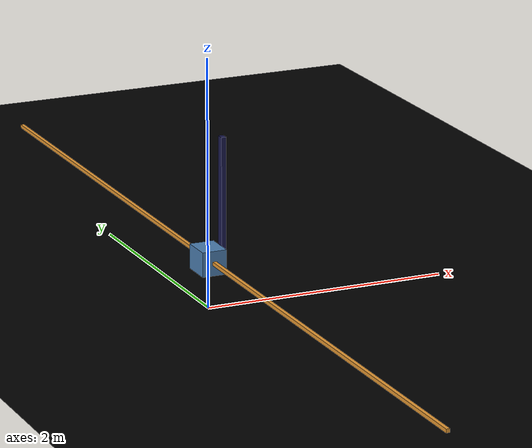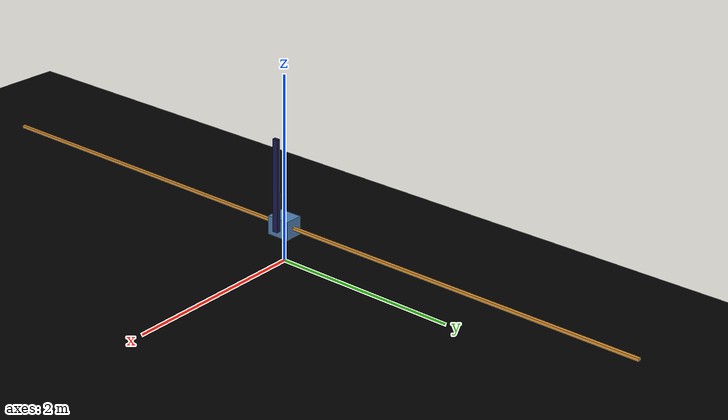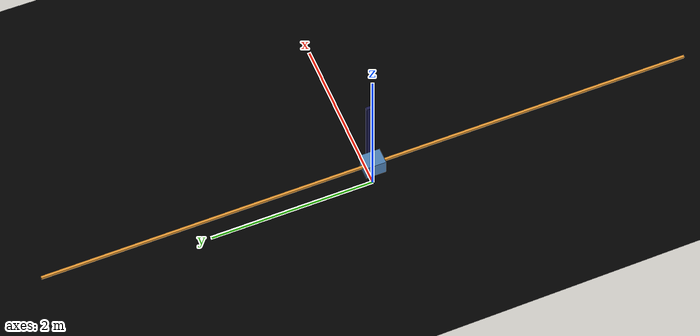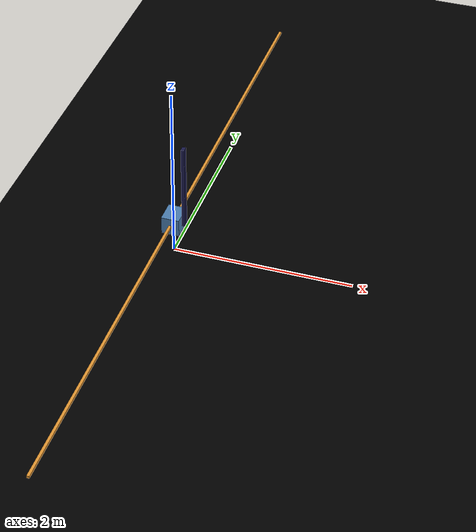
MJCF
<mujoco model="cartpole">
  <option iterations="50" timestep="0.001" solver="PGS" gravity="0 0 -9.81" />

  <compiler angle="radian" meshdir="meshes" eulerseq="zyx" autolimits="true" />

  <default>
    <joint limited="true" damping="0.01" armature="0.01" frictionloss="0.01" />
    <geom condim="4" contype="1" conaffinity="15" friction="0.9 0.2 0.2" solref="0.001 2" />
    <motor ctrllimited="true" />
    <equality solref="0.001 2" />
    <default class="visualgeom">
      <geom material="visualgeom" condim="1" contype="0" conaffinity="0" />
    </default>
  </default>

  <worldbody>
    <!-- 显示默认地面 -->
    <geom name="ground" type="plane" pos="0 0 0" size="100 100 0.001" quat="1 0 0 0" material="matplane" condim="3" conaffinity="15" rgba="0 0 0 1" />

    <light directional="true" diffuse="0.4 0.4 0.4" specular="0.1 0.1 0.1" pos="0 0 5.0" dir="0 0 -1" castshadow="false" />
    <light directional="true" diffuse="0.6 0.6 0.6" specular="0.2 0.2 0.2" pos="0 0 4" dir="0 0 -1" />
    <camera name="fixed" pos="0 -3.0 0.6" xyaxes="1 0 0 0 0 1" />
    <camera name="track" mode="trackcom" pos="0 -3.0 0.6" xyaxes="1 0 0 0 0 1" />

    <!-- 提高整个装置的初始高度 -->
    <body name="root" pos="0 0 0.2" quat="1 0 0 0">
      <!-- 添加 inertial -->
      <inertial pos="0 0 0" mass="1" diaginertia="0.01 0.01 0.01"/>
      <freejoint name="root" />
      <site name="imu" size="0.01" pos="0 0 0" />

      <!-- 固定 slider -->
      <body name="slider" pos="0 0 0.2">
        <geom size="0.015 4 0.015" type="box" rgba="0.9 0.6 0.2 1" contype="1" conaffinity="0" density="0" group="1" class="visualgeom" />
      </body>

      <!-- cart 在 slider 上滑动 -->
      <body name="cart" pos="0 0 0.2">
        <inertial pos="0 0 0" mass="1" diaginertia="0.002 0.002 0.002" />
        <joint name="slider_to_cart" pos="0 0 0" axis="0 1 0" type="slide" range="-4 4" actuatorfrcrange="-1000 1000" />
        <geom size="0.1 0.125 0.1" type="box" rgba="0.3 0.5 0.7 1" contype="1" conaffinity="0" density="0" group="1" class="visualgeom" />
        <geom type="box" rgba="0.3 0.5 0.7 1" size="0.1 0.125 0.1" />

        <body name="pole" pos="0.12 0 0">
          <inertial pos="0 0 0.47" mass="1" diaginertia="0.01 0.01 0.0005" />
          <joint name="cart_to_pole" pos="0 0 0" axis="1 0 0" type="hinge" range="-1.57 1.57" actuatorfrcrange="-1000 1000" />
          <geom size="0.02 0.03 0.5" pos="0 0 0.47" type="box" rgba="0.1 0.1 0.3 1" contype="1" conaffinity="0" density="0" group="1" class="visualgeom" />
          <geom type="box" rgba="0.1 0.0 0.3 1" size="0.02 0.03 0.5" pos="0 0 0.47" />
        </body>
      </body>
    </body>
  </worldbody>

  <asset>
    <texture name="texplane" type="2d" builtin="checker" rgb1=".0 .0 .0" rgb2=".8 .8 .8" width="100" height="100" />
    <material name="matplane" reflectance="0." texture="texplane" texrepeat="1 1" texuniform="true" />
    <material name="visualgeom" rgba="0.5 0.9 0.2 1" />
  </asset>

  <actuator>
    <motor name="slider_to_cart" joint="slider_to_cart" ctrllimited="true" ctrlrange="-1000 1000" gear="1" />
    <motor name="cart_to_pole" joint="cart_to_pole" ctrllimited="true" ctrlrange="-1000 1000" gear="1" />
  </actuator>

  <sensor>
    <actuatorpos name="slider_to_cart_p" actuator="slider_to_cart" />
    <actuatorvel name="slider_to_cart_v" actuator="slider_to_cart" />
    <actuatorfrc name="slider_to_cart_f" actuator="slider_to_cart" noise="0.001" />
    <actuatorpos name="cart_to_pole_p" actuator="cart_to_pole" />
    <actuatorvel name="cart_to_pole_v" actuator="cart_to_pole" />
    <actuatorfrc name="cart_to_pole_f" actuator="cart_to_pole" noise="0.001" />
    <framequat name="orientation" objtype="site" noise="0.001" objname="imu" />
    <gyro name="angular-velocity" site="imu" noise="0.005" cutoff="34.9" />
  </sensor>
</mujoco>
